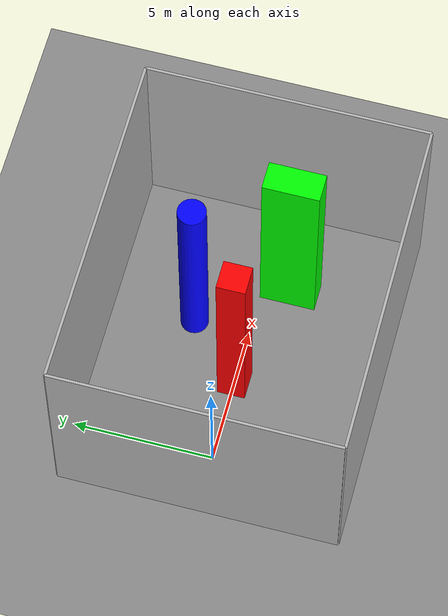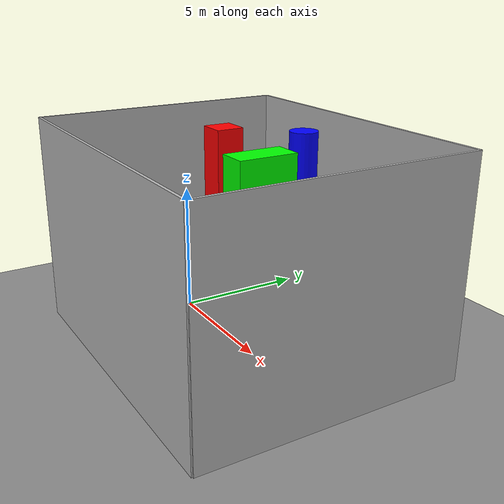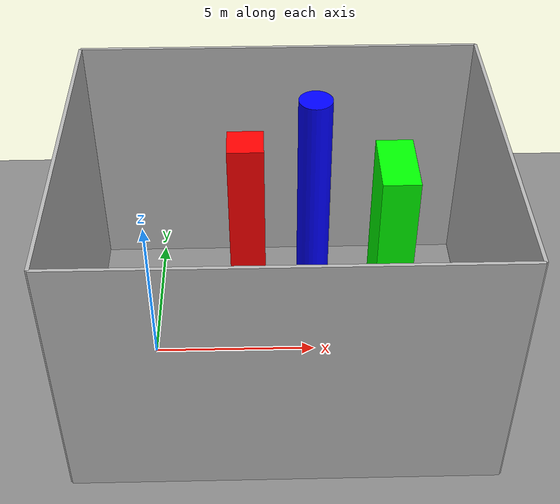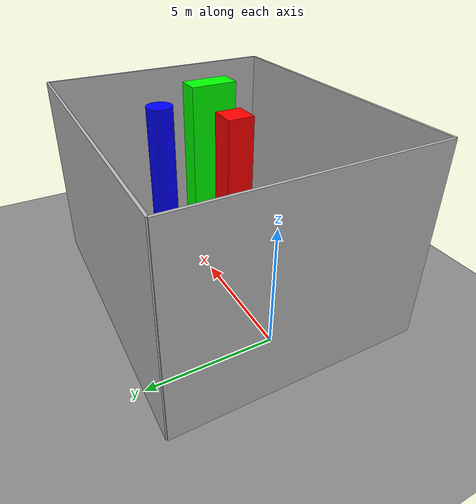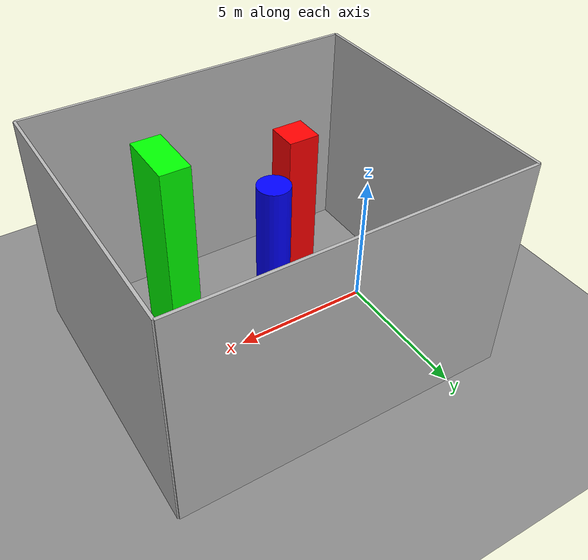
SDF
<?xml version="1.0" ?>
<sdf version="1.7">
  <world name="training_world">
    <!-- Match the pinned PX4 reference world's estimator environment. -->
    <physics type="ode">
      <max_step_size>0.004</max_step_size>
      <real_time_factor>1.0</real_time_factor>
      <real_time_update_rate>250</real_time_update_rate>
    </physics>
    <gravity>0 0 -9.8</gravity>
    <magnetic_field>6e-06 2.3e-05 -4.2e-05</magnetic_field>
    <atmosphere type="adiabatic"/>
    <spherical_coordinates>
      <surface_model>EARTH_WGS84</surface_model>
      <world_frame_orientation>ENU</world_frame_orientation>
      <latitude_deg>47.397971057728974</latitude_deg>
      <longitude_deg>8.546163739800146</longitude_deg>
      <elevation>0</elevation>
    </spherical_coordinates>
    <!-- Self-contained lighting and ground; no external model cache required. -->
    <light name="sun" type="directional">
      <cast_shadows>true</cast_shadows>
      <pose>0 0 10 0 0 0</pose>
      <diffuse>0.8 0.8 0.8 1</diffuse>
      <specular>0.2 0.2 0.2 1</specular>
      <direction>-0.5 0.1 -0.9</direction>
    </light>
    <model name="ground_plane">
      <static>true</static>
      <link name="link">
        <collision name="collision">
          <geometry><plane><normal>0 0 1</normal><size>100 100</size></plane></geometry>
        </collision>
        <visual name="visual">
          <geometry><plane><normal>0 0 1</normal><size>100 100</size></plane></geometry>
          <material>
            <ambient>0.35 0.35 0.35 1</ambient>
            <diffuse>0.55 0.55 0.55 1</diffuse>
          </material>
        </visual>
      </link>
    </model>

    <!-- Obstacles for RL Training -->
    <model name="box1">
      <pose>3 0 4 0 0 0</pose>
      <static>true</static>
      <link name="link">
        <collision name="collision">
          <geometry>
            <box>
              <size>1 1 8</size>
            </box>
          </geometry>
        </collision>
        <visual name="visual">
          <geometry>
            <box>
              <size>1 1 8</size>
            </box>
          </geometry>
          <material>
            <ambient>1 0 0 1</ambient>
          </material>
        </visual>
      </link>
    </model>

    <model name="cylinder_1">
      <pose>5 2 4 0 0 0</pose>
      <static>true</static>
      <link name="link">
        <collision name="collision">
          <geometry>
            <cylinder>
              <radius>0.5</radius>
              <length>8</length>
            </cylinder>
          </geometry>
        </collision>
        <visual name="visual">
          <geometry>
            <cylinder>
              <radius>0.5</radius>
              <length>8</length>
            </cylinder>
          </geometry>
          <material>
            <ambient>0 0 1 1</ambient>
          </material>
        </visual>
      </link>
    </model>

    <model name="box2">
      <pose>7 -1 4 0 0 0</pose>
      <static>true</static>
      <link name="link">
        <collision name="collision">
          <geometry>
            <box>
              <size>1 2 8</size>
            </box>
          </geometry>
        </collision>
        <visual name="visual">
          <geometry>
            <box>
              <size>1 2 8</size>
            </box>
          </geometry>
          <material>
            <ambient>0 1 0 1</ambient>
          </material>
        </visual>
      </link>
    </model>

    <!-- Walls surrounding the training area -->
    <model name="wall_n">
      <pose>10 0 4 0 0 0</pose>
      <static>true</static>
      <link name="link">
        <collision name="collision">
          <geometry><box><size>0.1 10 8</size></box></geometry>
        </collision>
        <visual name="visual">
          <geometry><box><size>0.1 10 8</size></box></geometry>
        </visual>
      </link>
    </model>

    <model name="wall_s">
      <pose>-2 0 4 0 0 0</pose>
      <static>true</static>
      <link name="link">
        <collision name="collision">
          <geometry><box><size>0.1 10 8</size></box></geometry>
        </collision>
        <visual name="visual">
          <geometry><box><size>0.1 10 8</size></box></geometry>
        </visual>
      </link>
    </model>

    <model name="wall_e">
      <pose>4 5 4 0 0 0</pose>
      <static>true</static>
      <link name="link">
        <collision name="collision">
          <geometry><box><size>12 0.1 8</size></box></geometry>
        </collision>
        <visual name="visual">
          <geometry><box><size>12 0.1 8</size></box></geometry>
        </visual>
      </link>
    </model>

    <model name="wall_w">
      <pose>4 -5 4 0 0 0</pose>
      <static>true</static>
      <link name="link">
        <collision name="collision">
          <geometry><box><size>12 0.1 8</size></box></geometry>
        </collision>
        <visual name="visual">
          <geometry><box><size>12 0.1 8</size></box></geometry>
        </visual>
      </link>
    </model>

  </world>
</sdf>
